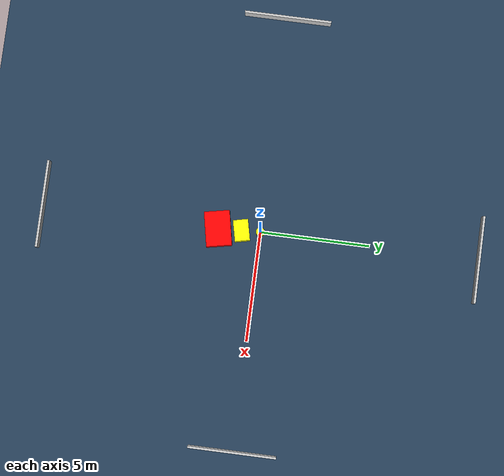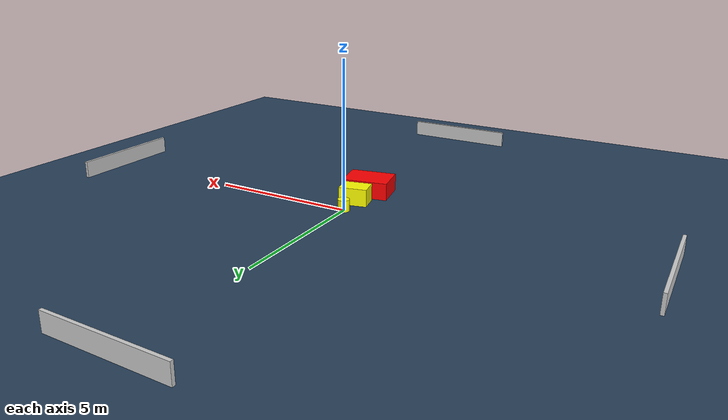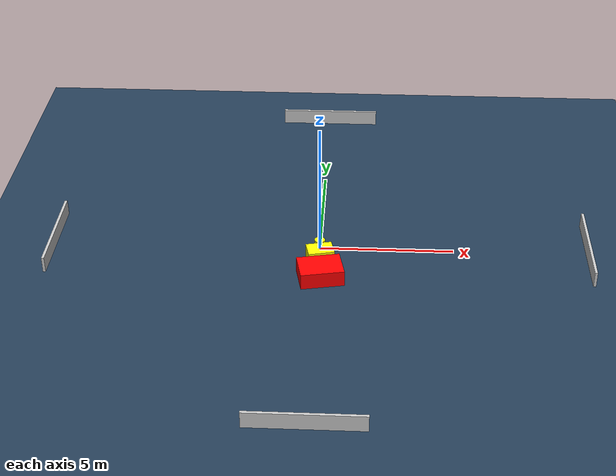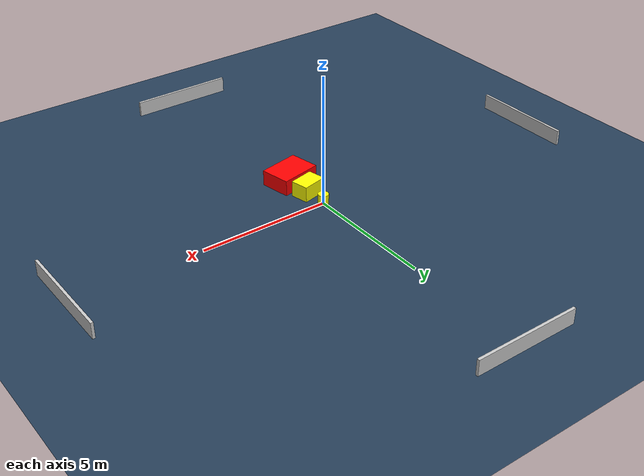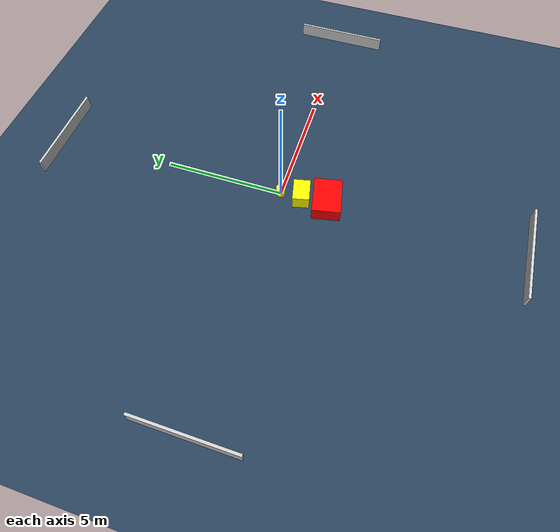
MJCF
<?xml version="1.0" ?>
<mujoco model="generated_environment">
  <option timestep="0.01" integrator="RK4" cone="elliptic"/>
  <default>
    <geom density="1"/>
  </default>
  <asset>
    <texture builtin="gradient" height="3072" name="skybox" rgb1="0.3 0.5 0.7" rgb2="0 0 0" type="skybox" width="512"/>
    <texture builtin="checker" height="300" name="groundplane" rgb1="0.2 0.3 0.4" rgb2="0.1 0.2 0.3" type="2d" width="300"/>
    <material name="groundplane" reflectance="0.2" texrepeat="5 5" texture="groundplane"/>
  </asset>
  <worldbody>
    <light dir="0 0 -1" directional="true" pos="0 0 1.5"/>
    <geom condim="3" friction="0.5 0.005 0.001" material="groundplane" name="floor" pos="0 0 0" size="0 0 0.05" type="plane"/>
    <body name="walls">
      <geom name="wall_1" condim="4" pos="-10.0 0.0 0.3" rgba="0.800000011920929 0.800000011920929 0.800000011920929 1.0" size="0.05 2.0 0.3" type="box"/>
      <geom name="wall_2" condim="4" pos="10.0 0.0 0.3" rgba="0.800000011920929 0.800000011920929 0.800000011920929 1.0" size="0.05 2.0 0.3" type="box"/>
      <geom name="wall_3" condim="4" pos="0.0 -10.0 0.3" rgba="0.800000011920929 0.800000011920929 0.800000011920929 1.0" size="2.0 0.05 0.3" type="box"/>
      <geom name="wall_4" condim="4" pos="0.0 10.0 0.3" rgba="0.800000011920929 0.800000011920929 0.800000011920929 1.0" size="2.0 0.05 0.3" type="box"/>
    </body>
    <body name="robot">
      <joint name="joint_x" type="slide" pos="0 0 0" axis="1 0 0"/>
      <joint name="joint_y" type="slide" pos="0 0 0" axis="0 1 0"/>
      <geom name="robot" type="cylinder" pos="0.0 0.0 0.2" size="0.2 0.2 0.0" mass="5.0" friction="1.0 0.005 0.0001" condim="4" rgba="1.0 1.0 0.0 1.0"/>
    </body>
    <body name="obstacle_1_movable">
      <geom name="obstacle_1_movable" condim="4" pos="0.053038590719416454 -0.8609711364353084 0.3" euler="0 0 102.73246783000337" friction="0.0 0.005 0.001" rgba="1.0 1.0 0.0 1.0" size="0.34549930852479815 0.4840273476849459 0.3" type="box" mass="0.1"/>
      <joint type="free"/>
    </body>
    <body name="obstacle_2_static">
      <geom name="obstacle_2_static" condim="4" pos="0.10648393379046932 -1.9302370526079167 0.3" euler="0 0 281.3557280810233" friction="0.0 0.005 0.001" rgba="1.0 0.0 0.0 1.0" size="0.5846817989365438 0.7956829483170724 0.3" type="box"/>
    </body>
  </worldbody>
  <actuator>
    <motor name="actuator_x" joint="joint_x" gear="1" ctrlrange="-1 1"/>
    <motor name="actuator_y" joint="joint_y" gear="1" ctrlrange="-1 1"/>
  </actuator>
</mujoco>
